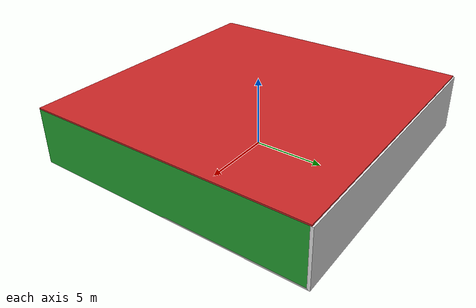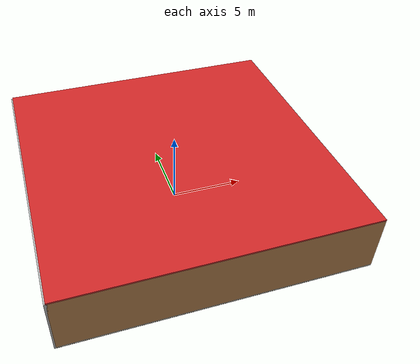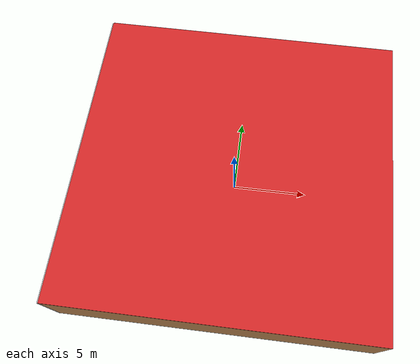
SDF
<sdf version="1.4">
 <world name="default">
  <physics type="ode">
   <max_step_size>0.001</max_step_size>
   <real_time_factor>1</real_time_factor>
   <real_time_update_rate>1000</real_time_update_rate>
   <gravity>0 0 -9.8</gravity>
  </physics>
  <scene><ambient>0.4 0.4 0.4 1</ambient><background>0.7 0.7 0.7 1</background><shadows>1</shadows></scene>
  <model name="Surrounding">
   <static>1</static>
   <link name="Ceiling">
    <collision name="Ceiling_Collision"><geometry><box><size>20 20 0.1</size></box></geometry></collision>
    <visual name="Ceiling_Visual">
     <geometry><box><size>20 20 0.1</size></box></geometry>
     <material>
      <script><uri>file://media/materials/scripts/gazebo.material</uri><name>Gazebo/RedGlow</name></script>
     </material>
    </visual>
    <pose>0 0 4.05 0 0 0</pose>
   </link>
   <link name="Wall_South">
    <collision name="Wall_South_Collision">
     <geometry><box><size>20 0 4</size></box></geometry>
     <pose>0 0 2 0 -0 0</pose>
    </collision>
    <visual name="Wall_South_Visual">
     <pose>0 0 2 0 -0 0</pose>
     <geometry><box><size>20 0 4</size></box></geometry>
     <material>
      <script><uri>file://media/materials/scripts/gazebo.material</uri><name>Gazebo/Wood</name></script>
     </material>
    </visual>
    <velocity_decay><linear>0</linear><angular>0</angular></velocity_decay>
    <pose>0 -10 0 0 -0 0</pose>
   </link>
   <link name="Wall_East">
    <collision name="Wall_21_Collision">
     <geometry><box><size>20 0 4</size></box></geometry>
     <pose>0 0 2 0 -0 0</pose>
    </collision>
    <visual name="Wall_21_Visual">
     <pose>0 0 2 0 -0 0</pose>
     <geometry><box><size>20 0 4</size></box></geometry>
     <material>
      <script><uri>file://media/materials/scripts/gazebo.material</uri><name>Gazebo/Green</name></script>
     </material>
    </visual>
    <velocity_decay><linear>0</linear><angular>0</angular></velocity_decay>
    <pose>10 0 0 0 -0 1.5708</pose>
   </link>
   <link name="Wall_North">
    <collision name="Wall_22_Collision">
     <geometry><box><size>20 0.2 4</size></box></geometry>
     <pose>0 0 2 0 -0 0</pose>
    </collision>
    <visual name="Wall_22_Visual">
     <pose>0 0 2 0 -0 0</pose>
     <geometry><box><size>20 0.2 4</size></box></geometry>
     <material>
      <script><uri>file://media/materials/scripts/gazebo.material</uri><name>Gazebo/WhiteGlow</name></script>
     </material>
    </visual>
    <velocity_decay><linear>0</linear><angular>0</angular></velocity_decay>
    <pose>0 10 0 0 -0 0</pose>
   </link>
   <link name="Wall_West">
    <collision name="Wall_23_Collision">
     <geometry><box><size>20 0.2 4</size></box></geometry>
     <pose>0 0 2 0 -0 0</pose>
    </collision>
    <visual name="Wall_23_Visual">
     <pose>0 0 2 0 -0 0</pose>
     <geometry><box><size>20 0.2 4</size></box></geometry>
     <material>
      <script><uri>file://media/materials/scripts/gazebo.material</uri><name>Gazebo/CloudySky</name></script>
     </material>
    </visual>
    <velocity_decay><linear>0</linear><angular>0</angular></velocity_decay>
    <pose>-10 0 0 0 0 -1.5708</pose>
   </link>
   <link name="Ground_link">
    <collision name="collision">
     <pose>0 0 .05 0 -0 0</pose>
     <geometry><box><size>20 20 0.1</size></box></geometry>
    </collision>
    <visual name="visual">
     <pose>0 0 .05 0 -0 0</pose>
     <geometry><box><size>20 20 0.1</size></box></geometry>
     <material>
      <script><uri>file://media/materials/scripts/gazebo.material</uri><name>Gazebo/CeilingTiled</name></script>
     </material>
    </visual>
   </link>
   <static>1</static>
  </model>
  <spherical_coordinates>
   <surface_model>EARTH_WGS84</surface_model>
   <latitude_deg>0</latitude_deg>
   <longitude_deg>0</longitude_deg>
   <elevation>0</elevation>
   <heading_deg>0</heading_deg>
  </spherical_coordinates>
  <light name="lightball_0" type="diffuse">
   <diffuse>0.8 0.8 0.8 1</diffuse>
   <specular>0.2 0.2 0.2 1</specular>
   <attenuation>
    <range>100</range>
    <constant>0.7</constant>
    <linear>0.01</linear>
    <quadratic>0.001</quadratic>
   </attenuation>
   <direction>-0.5 0.1 -0.9</direction>
   <pose>-7.97655891001 -9.65862451343 3.70542062787 0 0 0</pose>
  </light>
  <light name="lightball_1" type="diffuse">
   <diffuse>0.8 0.8 0.8 1</diffuse>
   <specular>0.2 0.2 0.2 1</specular>
   <attenuation>
    <range>100</range>
    <constant>0.7</constant>
    <linear>0.01</linear>
    <quadratic>0.001</quadratic>
   </attenuation>
   <direction>-0.5 0.1 -0.9</direction>
   <pose>-8.59279321237 -6.48059206791 3.22439665222 0 0 0</pose>
  </light>
  <include>
   <uri>model://textured_shapes</uri>
   <pose>-8.33257172313 -0.77841854916 0 0 0 2.7933853911</pose>
  </include>
  <include>
   <uri>model://textured_shapes</uri>
   <pose>-4.90777529439 0.919012160583 0 0 0 1.57029867306</pose>
  </include>
  <include><uri>model://cabinet</uri><pose>-2.69255515279 5.32494078991 0 0 0 0.611191407977</pose></include>
  <include><uri>model://cabinet</uri><pose>2.04190427477 -5.14789871072 0 0 0 2.82583072427</pose></include>
  <include>
   <uri>model://construction_cone</uri>
   <pose>5.13486205334 -4.01544568109 0 0 0 2.84005866938</pose>
  </include>
  <include><uri>model://table</uri><pose>5.66918600823 5.53368516137 0 0 0 2.20605988802</pose></include>
  <include><uri>model://cabinet</uri><pose>7.22219538558 4.51923216286 0 0 0 2.06244713099</pose></include>
 </world>
</sdf>

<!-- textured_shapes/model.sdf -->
<sdf version="1.6">
  <model name="textured_shapes">
    <pose>0 0 0.5 0 0 0</pose>
    <link name="box">
      <pose>0 -1.5 0 0 0 0</pose>
      <collision name="collision">
        <geometry>
          <box>
            <size>1 1 1</size>
          </box>
        </geometry>
      </collision>
      <visual name="visual">
        <geometry>
          <box>
            <size>1 1 1</size>
          </box>
        </geometry>
        <material>
          <script>
            <uri>model://../model_source/models/textured_shapes/materials/scripts</uri>
            <uri>model://../model_source/models/textured_shapes/materials/textures</uri>
            <name>TexturedShape/Squares</name>
          </script>
        </material>
      </visual>
    </link>
    <link name="sphere">
      <collision name="collision">
        <geometry>
          <sphere>
            <radius>0.5</radius>
          </sphere>
        </geometry>
      </collision>
      <visual name="visual">
        <geometry>
          <sphere>
            <radius>0.5</radius>
          </sphere>
        </geometry>
        <material>
          <script>
            <uri>model://../model_source/models/textured_shapes/materials/scripts</uri>
            <uri>model://../model_source/models/textured_shapes/materials/textures</uri>
            <name>TexturedShape/Squares</name>
          </script>
        </material>
      </visual>
    </link>
    <link name="cylinder">
      <pose>0 1.5 0 0 0 0</pose>
      <collision name="collision">
        <geometry>
          <cylinder>
            <radius>0.5</radius>
            <length>1</length>
          </cylinder>
        </geometry>
      </collision>
      <visual name="visual">
        <geometry>
          <cylinder>
            <radius>0.5</radius>
            <length>1</length>
          </cylinder>
        </geometry>
        <material>
          <script>
            <uri>model://../model_source/models/textured_shapes/materials/scripts</uri>
            <uri>model://../model_source/models/textured_shapes/materials/textures</uri>
            <name>TexturedShape/Squares</name>
          </script>
        </material>
      </visual>
    </link>
  </model>
</sdf>

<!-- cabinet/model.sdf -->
<sdf version="1.5">
  <model name="cabinet">
    <static>true</static>
    <link name="cabinet_bottom_plate">
      <inertial>
        <pose>0 0 -1 0 0 0</pose>
        <inertia>
          <ixx>2.050000</ixx>
          <ixy>0</ixy>
          <ixz>0</ixz>
          <iyy>2.050000</iyy>
          <iyz>0</iyz>
          <izz>2.050000</izz>
        </inertia>
        <mass>25.000000</mass>
      </inertial>
      <collision name="cabinet_bottom_plate_geom">
        <pose>0 0 0.010000 0 0 0</pose>
        <geometry>
          <box>
            <size>0.450000 0.450000 0.020000</size>
          </box>
        </geometry>
      </collision>
      <visual name="cabinet_bottom_plate_geom_visual">
        <pose>0 0 0.010000 0 0 0</pose>
        <geometry>
          <box>
            <size>0.450000 0.450000 0.020000</size>
          </box>
        </geometry>
        <material>
          <script>
            <uri>model://media/materials/scripts/gazebo.material</uri>
            <name>Gazebo/Wood</name>
          </script>
        </material>
      </visual>
      <collision name="cabinet_bottom_plate_geom_cabinet_back_plate">
        <pose>0.235000 0 0.510000 0 0 0</pose>
        <geometry>
          <box>
            <size>0.020000 0.450000 1.020000</size>
          </box>
        </geometry>
      </collision>
      <visual name="cabinet_bottom_plate_geom_cabinet_back_plate_visual">
        <pose>0.235000 0 0.510000 0 0 0</pose>
        <geometry>
          <box>
            <size>0.020000 0.450000 1.020000</size>
          </box>
        </geometry>
        <material>
          <script>
            <uri>model://media/materials/scripts/gazebo.material</uri>
            <name>Gazebo/Wood</name>
          </script>
        </material>
      </visual>
      <collision name="cabinet_bottom_plate_geom_cabinet_left_plate">
        <pose>0 0.235000 0.510000 0 0 0</pose>
        <geometry>
          <box>
            <size>0.450000 0.020000 1.020000</size>
          </box>
        </geometry>
      </collision>
      <visual name="cabinet_bottom_plate_geom_cabinet_left_plate_visual">
        <pose>0 0.235000 0.510000 0 0 0</pose>
        <geometry>
          <box>
            <size>0.450000 0.020000 1.020000</size>
          </box>
        </geometry>
        <material>
          <script>
            <uri>model://media/materials/scripts/gazebo.material</uri>
            <name>Gazebo/Wood</name>
          </script>
        </material>
      </visual>
      <collision name="cabinet_bottom_plate_geom_cabinet_middle_plate">
        <pose>0 0 0.510000 0 0 0</pose>
        <geometry>
          <box>
            <size>0.450000 0.450000 0.020000</size>
          </box>
        </geometry>
      </collision>
      <visual name="cabinet_bottom_plate_geom_cabinet_middle_plate_visual">
        <pose>0 0 0.510000 0 0 0</pose>
        <geometry>
          <box>
            <size>0.450000 0.450000 0.020000</size>
          </box>
        </geometry>
        <material>
          <script>
            <uri>model://media/materials/scripts/gazebo.material</uri>
            <name>Gazebo/Wood</name>
          </script>
        </material>
      </visual>
      <collision name="cabinet_bottom_plate_geom_cabinet_right_plate">
        <pose>0 -0.235000 0.510000 0 0 0</pose>
        <geometry>
          <box>
            <size>0.450000 0.020000 1.020000</size>
          </box>
        </geometry>
      </collision>
      <visual name="cabinet_bottom_plate_geom_cabinet_right_plate_visual">
        <pose>0 -0.235000 0.510000 0 0 0</pose>
        <geometry>
          <box>
            <size>0.450000 0.020000 1.020000</size>
          </box>
        </geometry>
        <material>
          <script>
            <uri>model://media/materials/scripts/gazebo.material</uri>
            <name>Gazebo/Wood</name>
          </script>
        </material>
      </visual>
      <collision name="cabinet_bottom_plate_geom_cabinet_top_plate">
        <pose>0 0 1.010000 0 0 0</pose>
        <geometry>
          <box>
            <size>0.450000 0.450000 0.020000</size>
          </box>
        </geometry>
      </collision>
      <visual name="cabinet_bottom_plate_geom_cabinet_top_plate_visual">
        <pose>0 0 1.010000 0 0 0</pose>
        <geometry>
          <box>
            <size>0.450000 0.450000 0.020000</size>
          </box>
        </geometry>
        <material>
          <script>
            <uri>model://media/materials/scripts/gazebo.material</uri>
            <name>Gazebo/Wood</name>
          </script>
        </material>
      </visual>
    </link>
  </model>
</sdf>

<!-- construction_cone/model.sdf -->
<sdf version="1.5">
  <model name="Construction Cone">
    <link name="link">
      <collision name="collision">
        <geometry>
          <mesh>
            <scale>10 10 10</scale>
            <uri>file://isr-testbed/construction_cone/meshes/construction_cone.dae</uri>
          </mesh>
        </geometry>
      </collision>
      <visual name="visual">
        <geometry>
          <mesh>
            <scale>10 10 10</scale>
            <uri>file://isr-testbed/construction_cone/meshes/construction_cone.dae</uri>
          </mesh>
        </geometry>
      </visual>
    </link>
  </model>
</sdf>

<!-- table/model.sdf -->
<sdf version="1.5">
  <model name="table">
    <static>true</static>
    <link name="link">
      <collision name="surface">
        <pose>0 0 1.0 0 0 0</pose>
        <geometry>
          <box>
            <size>1.5 0.8 0.03</size>
          </box>
        </geometry>
        <surface>
          <friction>
            <ode>
              <mu>0.6</mu>
              <mu2>0.6</mu2>
            </ode>
          </friction>
        </surface>
      </collision>
      <visual name="visual1">
        <pose>0 0 1.0 0 0 0</pose>
        <geometry>
          <box>
            <size>1.5 0.8 0.03</size>
          </box>
        </geometry>
        <material>
          <script>
            <uri>model://media/materials/scripts/gazebo.material</uri>
            <name>Gazebo/Wood</name>
          </script>
        </material>
      </visual>
      <collision name="front_left_leg">
        <pose>0.68 0.38 0.5 0 0 0</pose>
        <geometry>
          <cylinder>
            <radius>0.02</radius>
            <length>1.0</length>
          </cylinder>
        </geometry>
      </collision>
      <visual name="front_left_leg">
        <pose>0.68 0.38 0.5 0 0 0</pose>
        <geometry>
          <cylinder>
            <radius>0.02</radius>
            <length>1.0</length>
          </cylinder>
        </geometry>
        <material>
          <script>
            <uri>model://media/materials/scripts/gazebo.material</uri>
            <name>Gazebo/Grey</name>
          </script>
        </material>
      </visual>
      <collision name="front_right_leg">
        <pose>0.68 -0.38 0.5 0 0 0</pose>
        <geometry>
          <cylinder>
            <radius>0.02</radius>
            <length>1.0</length>
          </cylinder>
        </geometry>
      </collision>
      <visual name="front_right_leg">
        <pose>0.68 -0.38 0.5 0 0 0</pose>
        <geometry>
          <cylinder>
            <radius>0.02</radius>
            <length>1.0</length>
          </cylinder>
        </geometry>
        <material>
          <script>
            <uri>model://media/materials/scripts/gazebo.material</uri>
            <name>Gazebo/Grey</name>
          </script>
        </material>
      </visual>
      <collision name="back_right_leg">
        <pose>-0.68 -0.38 0.5 0 0 0</pose>
        <geometry>
          <cylinder>
            <radius>0.02</radius>
            <length>1.0</length>
          </cylinder>
        </geometry>
      </collision>
      <visual name="back_right_leg">
        <pose>-0.68 -0.38 0.5 0 0 0</pose>
        <geometry>
          <cylinder>
            <radius>0.02</radius>
            <length>1.0</length>
          </cylinder>
        </geometry>
        <material>
          <script>
            <uri>model://media/materials/scripts/gazebo.material</uri>
            <name>Gazebo/Grey</name>
          </script>
        </material>
      </visual>
      <collision name="back_left_leg">
        <pose>-0.68 0.38 0.5 0 0 0</pose>
        <geometry>
          <cylinder>
            <radius>0.02</radius>
            <length>1.0</length>
          </cylinder>
        </geometry>
      </collision>
      <visual name="back_left_leg">
        <pose>-0.68 0.38 0.5 0 0 0</pose>
        <geometry>
          <cylinder>
            <radius>0.02</radius>
            <length>1.0</length>
          </cylinder>
        </geometry>
        <material>
          <script>
            <uri>model://media/materials/scripts/gazebo.material</uri>
            <name>Gazebo/Grey</name>
          </script>
        </material>
      </visual>
    </link>
  </model>
</sdf>
